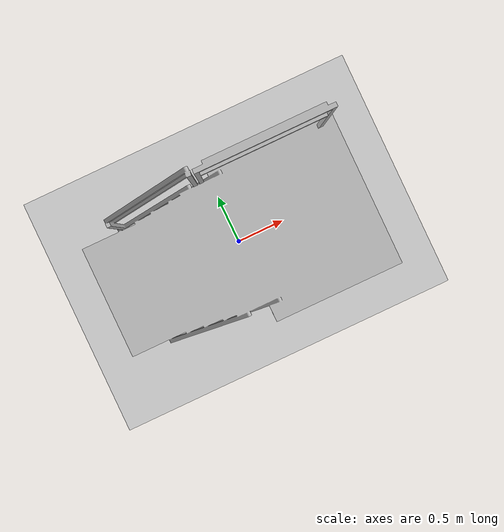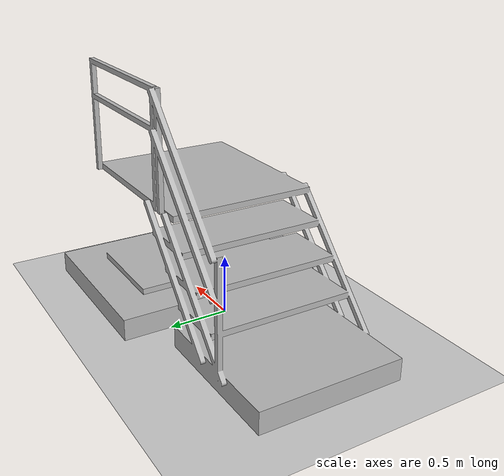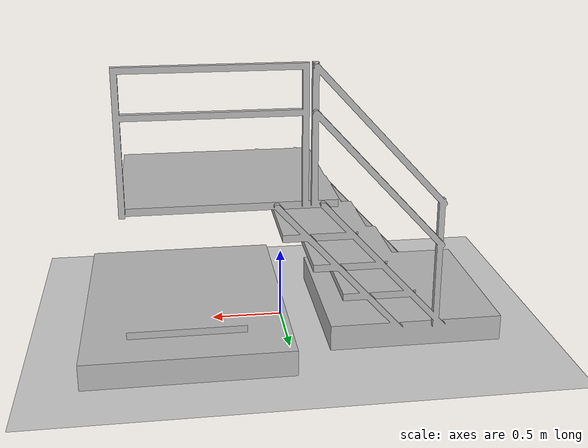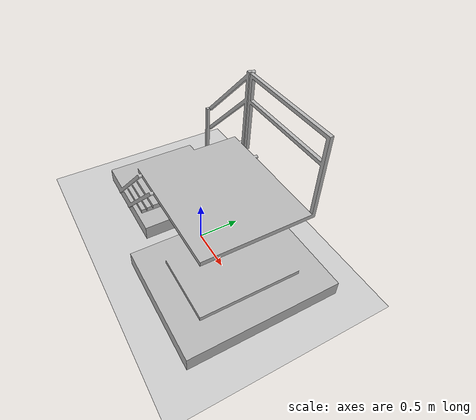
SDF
<?xml version="1.0" ?>
<sdf version="1.4">
  <world name="default">
    <physics type="ode">
      <gravity>0 0 -9.81</gravity>
      <ode>
        <solver>
          <type>quick</type>
          <iters>50</iters>
          <sor>1.4</sor>
        </solver>
        <constraints>
          <cfm>0.0</cfm>
          <erp>0.0</erp>
          <contact_max_correcting_vel>100.0</contact_max_correcting_vel>
          <contact_surface_layer>0.0</contact_surface_layer>
        </constraints>
      </ode>
      <real_time_update_rate>1000</real_time_update_rate>
      <max_step_size>0.001</max_step_size>
    </physics>
    <!-- A global light source -->
    <include>
      <uri>model://sun</uri>
    </include>
    <!-- A ground plane -->
    <include>
      <uri>model://ground_plane</uri>
    </include>

    <include>
      <uri>model://stairs_1096</uri>
    </include>

  </world>
</sdf>

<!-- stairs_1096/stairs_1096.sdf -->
<sdf version="1.6">
  <model name="stairs_1096">
    <static>true</static>
    <pose frame=''>0. 0. 0. 1.5707 0. 0.</pose>
    <link name="base">
      <collision name="collision">
        <geometry>
          <mesh>
            <uri>model://stairs_1096/meshes/stairs_1096.stl</uri>
            <scale>0.001 0.001 0.001</scale>
          </mesh>
        </geometry>
      </collision>
      <visual name="visual">
        <geometry>
          <mesh>
            <uri>model://stairs_1096/meshes/stairs_1096.stl</uri>
            <scale>0.001 0.001 0.001</scale>
          </mesh>
        </geometry>
       <material>
          <script>
            <name>Gazebo/Steps</name>
            <uri>file://media/materials/scripts/gazebo.material</uri>
          </script>
        </material>
      </visual>
    </link>
  </model>
</sdf>
